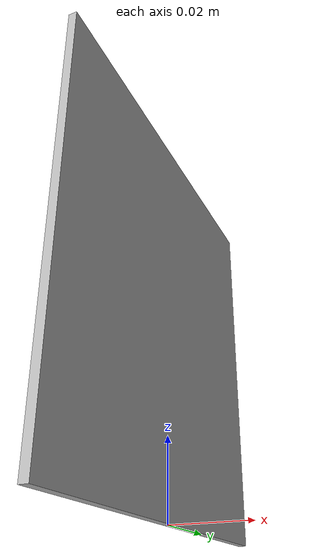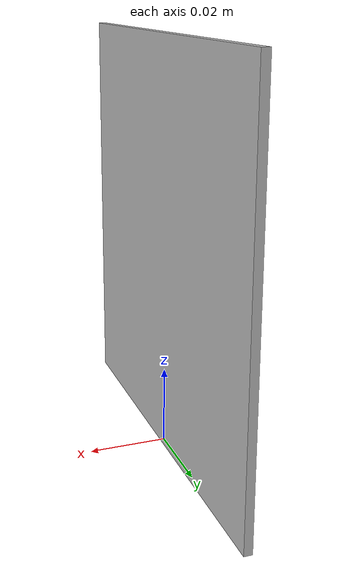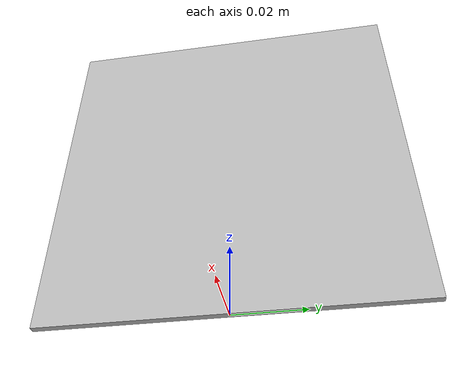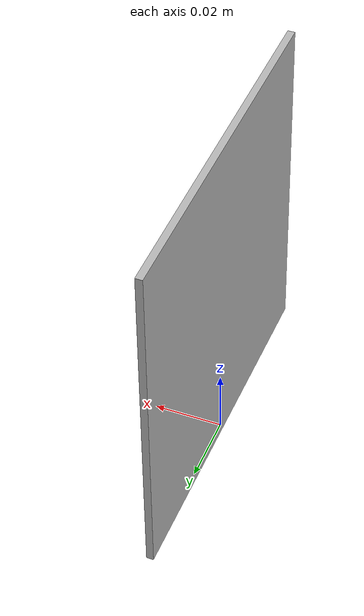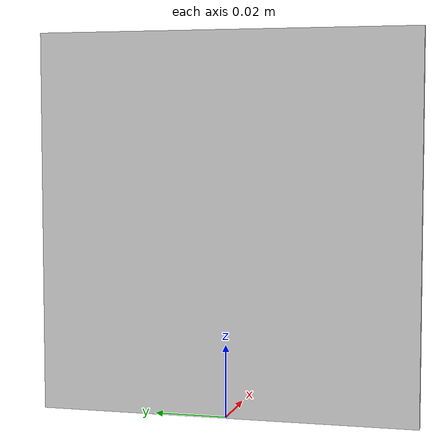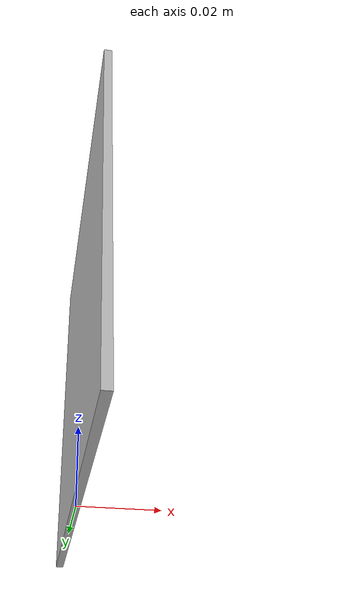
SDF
<?xml version="1.0" ?><sdf version="1.4">
  <model name="ArucoMarker">
    <static>true</static>
    <link name="link">
      <visual name="visual">
        <geometry>
          <mesh>
            <uri>model://arucoMarker23/meshes/ArucoMarker23.dae</uri>
          <scale>0.21 0.21 0.21</scale></mesh>
        </geometry>
      </visual>
    </link>
  </model>
</sdf>
